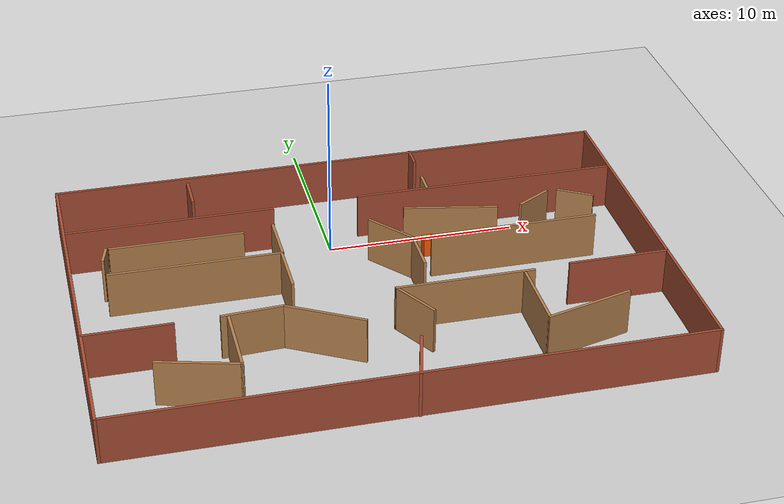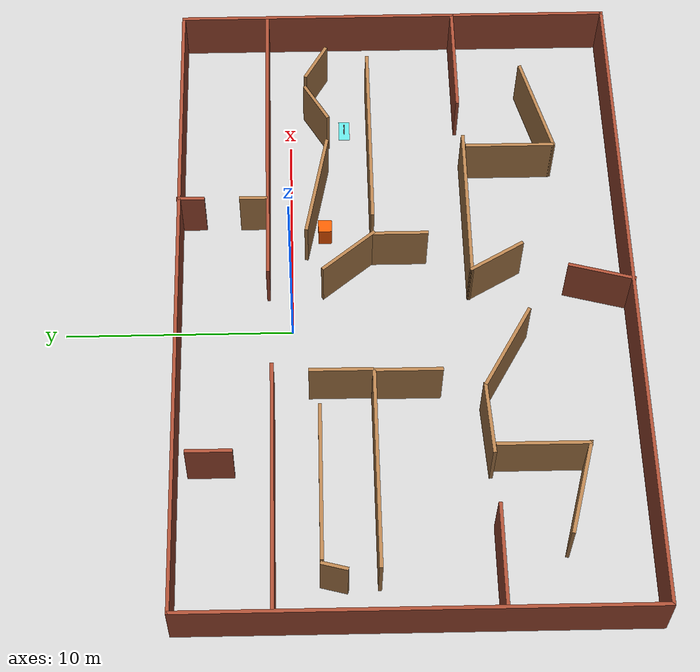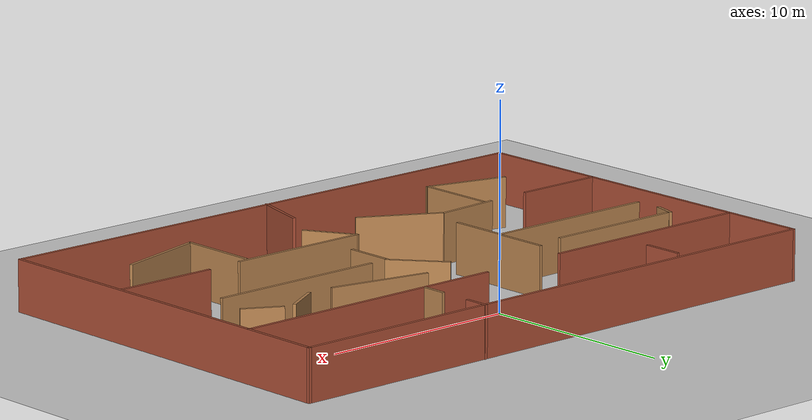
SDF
<sdf version="1.7">
 <world name="my_world">
  <model name="ground_plane">
   <static>1</static>
   <link name="link">
    <collision name="collision">
     <geometry><plane><normal>0 0 1</normal><size>100 100</size></plane></geometry>
     <surface>
      <contact><collide_bitmask>65535</collide_bitmask></contact>
      <friction><ode><mu>100</mu><mu2>50</mu2></ode></friction>
     </surface>
    </collision>
    <visual name="visual">
     <cast_shadows>0</cast_shadows>
     <geometry><plane><normal>0 0 1</normal><size>100 100</size></plane></geometry>
     <material>
      <script><uri>file://media/materials/scripts/gazebo.material</uri><name>Gazebo/Grey</name></script>
     </material>
    </visual>
   </link>
  </model>
  <model name="officeroom">
   <pose>0.9981 -4.92976 0 0 -0 0</pose>
   <link name="Wall_10">
    <collision name="Wall_10_Collision">
     <geometry><box><size>20 0.15 2.5</size></box></geometry>
     <pose>0 0 1.25 0 -0 0</pose>
     <surface><contact><ode><max_vel>0.2</max_vel><min_depth>0.005</min_depth></ode></contact></surface>
    </collision>
    <visual name="Wall_10_Visual">
     <pose>0 0 1.25 0 -0 0</pose>
     <geometry><box><size>20 0.15 2.5</size></box></geometry>
     <material>
      <script><uri>file://media/materials/scripts/gazebo.material</uri><name>Gazebo/Bricks</name></script>
      <ambient>1 1 1 1</ambient>
     </material>
     <meta><layer>0</layer></meta>
    </visual>
    <pose>14.925 0.014919 0 0 -0 -1.57081</pose>
   </link>
   <link name="Wall_107">
    <collision name="Wall_107_Collision">
     <geometry><box><size>3.27854 0.15 2.5</size></box></geometry>
     <pose>0 0 1.25 0 -0 0</pose>
     <surface><contact><ode><max_vel>0.2</max_vel><min_depth>0.005</min_depth></ode></contact></surface>
    </collision>
    <visual name="Wall_107_Visual">
     <pose>0 0 1.25 0 -0 0</pose>
     <geometry><box><size>3.27854 0.15 2.5</size></box></geometry>
     <material>
      <script><uri>file://media/materials/scripts/gazebo.material</uri><name>Gazebo/Wood</name></script>
      <ambient>1 1 1 1</ambient>
     </material>
     <meta><layer>0</layer></meta>
    </visual>
    <pose>-6.58027 -3.242 0 0 -0 -3.08207</pose>
   </link>
   <link name="Wall_109">
    <collision name="Wall_109_Collision">
     <geometry><box><size>4.5 0.15 2.5</size></box></geometry>
     <pose>0 0 1.25 0 -0 0</pose>
     <surface><contact><ode><max_vel>0.2</max_vel><min_depth>0.005</min_depth></ode></contact></surface>
    </collision>
    <visual name="Wall_109_Visual">
     <pose>0 0 1.25 0 -0 0</pose>
     <geometry><box><size>4.5 0.15 2.5</size></box></geometry>
     <material>
      <script><uri>file://media/materials/scripts/gazebo.material</uri><name>Gazebo/Bricks</name></script>
      <ambient>1 1 1 1</ambient>
     </material>
     <meta><layer>0</layer></meta>
    </visual>
    <pose>-12.6881 -3.41033 0 0 -0 0</pose>
   </link>
   <link name="Wall_113">
    <collision name="Wall_113_Collision">
     <geometry><box><size>7.25 0.15 2.5</size></box></geometry>
     <pose>0 0 1.25 0 -0 0</pose>
     <surface><contact><ode><max_vel>0.2</max_vel><min_depth>0.005</min_depth></ode></contact></surface>
    </collision>
    <visual name="Wall_113_Visual">
     <pose>0 0 1.25 0 -0 0</pose>
     <geometry><box><size>7.25 0.15 2.5</size></box></geometry>
     <material>
      <script><uri>file://media/materials/scripts/gazebo.material</uri><name>Gazebo/Wood</name></script>
      <ambient>1 1 1 1</ambient>
     </material>
     <meta><layer>0</layer></meta>
    </visual>
    <pose>4.22386 -2.91887 0 0 -0 0</pose>
   </link>
   <link name="Wall_115">
    <collision name="Wall_115_Collision">
     <geometry><box><size>5.25 0.15 2.5</size></box></geometry>
     <pose>0 0 1.25 0 -0 0</pose>
     <surface><contact><ode><max_vel>0.2</max_vel><min_depth>0.005</min_depth></ode></contact></surface>
    </collision>
    <visual name="Wall_115_Visual">
     <pose>0 0 1.25 0 -0 0</pose>
     <geometry><box><size>5.25 0.15 2.5</size></box></geometry>
     <material>
      <script><uri>file://media/materials/scripts/gazebo.material</uri><name>Gazebo/Bricks</name></script>
      <ambient>1 1 1 1</ambient>
     </material>
     <meta><layer>0</layer></meta>
    </visual>
    <pose>12.3137 -2.7793 0 0 -0 3.14159</pose>
   </link>
   <link name="Wall_118">
    <collision name="Wall_118_Collision">
     <geometry><box><size>2.5 0.15 2.5</size></box></geometry>
     <pose>0 0 1.25 0 -0 0</pose>
     <surface><contact><ode><max_vel>0.2</max_vel><min_depth>0.005</min_depth></ode></contact></surface>
    </collision>
    <visual name="Wall_118_Visual">
     <pose>0 0 1.25 0 -0 0</pose>
     <geometry><box><size>2.5 0.15 2.5</size></box></geometry>
     <material>
      <script><uri>file://media/materials/scripts/gazebo.material</uri><name>Gazebo/Wood</name></script>
      <ambient>1 1 1 1</ambient>
     </material>
     <meta><layer>0</layer></meta>
    </visual>
    <pose>2.60295 0.147134 0 0 -0 -1.5708</pose>
   </link>
   <link name="Wall_12">
    <collision name="Wall_12_Collision">
     <geometry><box><size>30 0.15 2.5</size></box></geometry>
     <pose>0 0 1.25 0 -0 0</pose>
     <surface><contact><ode><max_vel>0.2</max_vel><min_depth>0.005</min_depth></ode></contact></surface>
    </collision>
    <visual name="Wall_12_Visual">
     <pose>0 0 1.25 0 -0 0</pose>
     <geometry><box><size>30 0.15 2.5</size></box></geometry>
     <material>
      <script><uri>file://media/materials/scripts/gazebo.material</uri><name>Gazebo/Bricks</name></script>
      <ambient>1 1 1 1</ambient>
     </material>
     <meta><layer>0</layer></meta>
    </visual>
    <pose>-0.000162 -9.90993 0 0 -0 3.14159</pose>
   </link>
   <link name="Wall_120">
    <collision name="Wall_120_Collision">
     <geometry><box><size>2.75 0.15 2.5</size></box></geometry>
     <pose>0 0 1.25 0 -0 0</pose>
     <surface><contact><ode><max_vel>0.2</max_vel><min_depth>0.005</min_depth></ode></contact></surface>
    </collision>
    <visual name="Wall_120_Visual">
     <pose>0 0 1.25 0 -0 0</pose>
     <geometry><box><size>2.75 0.15 2.5</size></box></geometry>
     <material>
      <script><uri>file://media/materials/scripts/gazebo.material</uri><name>Gazebo/Wood</name></script>
      <ambient>1 1 1 1</ambient>
     </material>
     <meta><layer>0</layer></meta>
    </visual>
    <pose>1.32386 -4.0447 0 0 -0 -1.0472</pose>
   </link>
   <link name="Wall_125">
    <collision name="Wall_125_Collision">
     <geometry><box><size>4 0.15 2.5</size></box></geometry>
     <pose>0 0 1.25 0 -0 0</pose>
     <surface><contact><ode><max_vel>0.2</max_vel><min_depth>0.005</min_depth></ode></contact></surface>
    </collision>
    <visual name="Wall_125_Visual">
     <pose>0 0 1.25 0 -0 0</pose>
     <geometry><box><size>4 0.15 2.5</size></box></geometry>
     <material>
      <script><uri>file://media/materials/scripts/gazebo.material</uri><name>Gazebo/Wood</name></script>
      <ambient>1 1 1 1</ambient>
     </material>
     <meta><layer>0</layer></meta>
    </visual>
    <pose>-7.82101 -5.406 0 0 -0 -1.5708</pose>
   </link>
   <link name="Wall_127">
    <collision name="Wall_127_Collision">
     <geometry><box><size>4 0.15 2.5</size></box></geometry>
     <pose>0 0 1.25 0 -0 0</pose>
     <surface><contact><ode><max_vel>0.2</max_vel><min_depth>0.005</min_depth></ode></contact></surface>
    </collision>
    <visual name="Wall_127_Visual">
     <pose>0 0 1.25 0 -0 0</pose>
     <geometry><box><size>4 0.15 2.5</size></box></geometry>
     <material>
      <script><uri>file://media/materials/scripts/gazebo.material</uri><name>Gazebo/Wood</name></script>
      <ambient>1 1 1 1</ambient>
     </material>
     <meta><layer>0</layer></meta>
    </visual>
    <pose>7.28181 -5.01384 0 0 -0 -1.5708</pose>
   </link>
   <link name="Wall_129">
    <collision name="Wall_129_Collision">
     <geometry><box><size>4.25 0.15 2.5</size></box></geometry>
     <pose>0 0 1.25 0 -0 0</pose>
     <surface><contact><ode><max_vel>0.2</max_vel><min_depth>0.005</min_depth></ode></contact></surface>
    </collision>
    <visual name="Wall_129_Visual">
     <pose>0 0 1.25 0 -0 0</pose>
     <geometry><box><size>4.25 0.15 2.5</size></box></geometry>
     <material>
      <script><uri>file://media/materials/scripts/gazebo.material</uri><name>Gazebo/Wood</name></script>
      <ambient>1 1 1 1</ambient>
     </material>
     <meta><layer>0</layer></meta>
    </visual>
    <pose>-9.80116 -6.80042 0 0 -0 2.87979</pose>
   </link>
   <link name="Wall_132">
    <collision name="Wall_132_Collision">
     <geometry><box><size>4.75 0.15 2.5</size></box></geometry>
     <pose>0 0 1.25 0 -0 0</pose>
     <surface><contact><ode><max_vel>0.2</max_vel><min_depth>0.005</min_depth></ode></contact></surface>
    </collision>
    <visual name="Wall_132_Visual">
     <pose>0 0 1.25 0 -0 0</pose>
     <geometry><box><size>4.75 0.15 2.5</size></box></geometry>
     <material>
      <script><uri>file://media/materials/scripts/gazebo.material</uri><name>Gazebo/Wood</name></script>
      <ambient>1 1 1 1</ambient>
     </material>
     <meta><layer>0</layer></meta>
    </visual>
    <pose>9.51735 -6.40461 0 0 -0 0.261799</pose>
   </link>
   <link name="Wall_134">
    <collision name="Wall_134_Collision">
     <geometry><box><size>3 0.15 2.5</size></box></geometry>
     <pose>0 0 1.25 0 -0 0</pose>
     <surface><contact><ode><max_vel>0.2</max_vel><min_depth>0.005</min_depth></ode></contact></surface>
    </collision>
    <visual name="Wall_134_Visual">
     <pose>0 0 1.25 0 -0 0</pose>
     <geometry><box><size>3 0.15 2.5</size></box></geometry>
     <material>
      <script><uri>file://media/materials/scripts/gazebo.material</uri><name>Gazebo/Bricks</name></script>
      <ambient>1 1 1 1</ambient>
     </material>
     <meta><layer>0</layer></meta>
    </visual>
    <pose>0.445972 -8.57754 0 0 -0 1.309</pose>
   </link>
   <link name="Wall_15">
    <collision name="Wall_15_Collision">
     <geometry><box><size>20 0.15 2.5</size></box></geometry>
     <pose>0 0 1.25 0 -0 0</pose>
     <surface><contact><ode><max_vel>0.2</max_vel><min_depth>0.005</min_depth></ode></contact></surface>
    </collision>
    <visual name="Wall_15_Visual">
     <pose>0 0 1.25 0 -0 0</pose>
     <geometry><box><size>20 0.15 2.5</size></box></geometry>
     <material>
      <script><uri>file://media/materials/scripts/gazebo.material</uri><name>Gazebo/Bricks</name></script>
      <ambient>1 1 1 1</ambient>
     </material>
     <meta><layer>0</layer></meta>
    </visual>
    <pose>-14.9252 0.015073 0 0 -0 1.5708</pose>
   </link>
   <link name="Wall_2">
    <collision name="Wall_2_Collision">
     <geometry><box><size>30 0.15 2.5</size></box></geometry>
     <pose>0 0 1.25 0 -0 0</pose>
     <surface><contact><ode><max_vel>0.2</max_vel><min_depth>0.005</min_depth></ode></contact></surface>
    </collision>
    <visual name="Wall_2_Visual">
     <pose>0 0 1.25 0 -0 0</pose>
     <geometry><box><size>30 0.15 2.5</size></box></geometry>
     <material>
      <script><uri>file://media/materials/scripts/gazebo.material</uri><name>Gazebo/Bricks</name></script>
      <ambient>1 1 1 1</ambient>
     </material>
     <meta><layer>0</layer></meta>
    </visual>
    <pose>0.000163 9.93976 0 0 -0 0</pose>
   </link>
   <link name="Wall_29">
    <collision name="Wall_29_Collision">
     <geometry><box><size>1.25 0.15 2.5</size></box></geometry>
     <pose>0 0 1.25 0 -0 0</pose>
     <surface><contact><ode><max_vel>0.2</max_vel><min_depth>0.005</min_depth></ode></contact></surface>
    </collision>
    <visual name="Wall_29_Visual">
     <pose>0 0 1.25 0 -0 0</pose>
     <geometry><box><size>1.25 0.15 2.5</size></box></geometry>
     <material>
      <script><uri>file://media/materials/scripts/gazebo.material</uri><name>Gazebo/Bricks</name></script>
      <ambient>1 1 1 1</ambient>
     </material>
     <meta><layer>0</layer></meta>
    </visual>
    <pose>4.61028 9.42084 0 0 -0 -1.5708</pose>
   </link>
   <link name="Wall_31">
    <collision name="Wall_31_Collision">
     <geometry><box><size>1.25 0.15 2.5</size></box></geometry>
     <pose>0 0 1.25 0 -0 0</pose>
     <surface><contact><ode><max_vel>0.2</max_vel><min_depth>0.005</min_depth></ode></contact></surface>
    </collision>
    <visual name="Wall_31_Visual">
     <pose>0 0 1.25 0 -0 0</pose>
     <geometry><box><size>1.25 0.15 2.5</size></box></geometry>
     <material>
      <script><uri>file://media/materials/scripts/gazebo.material</uri><name>Gazebo/Wood</name></script>
      <ambient>1 1 1 1</ambient>
     </material>
     <meta><layer>0</layer></meta>
    </visual>
    <pose>4.59016 6.61881 0 0 -0 1.5708</pose>
   </link>
   <link name="Wall_34">
    <collision name="Wall_34_Collision">
     <geometry><box><size>2 0.15 2.5</size></box></geometry>
     <pose>0 0 1.25 0 -0 0</pose>
     <surface><contact><ode><max_vel>0.2</max_vel><min_depth>0.005</min_depth></ode></contact></surface>
    </collision>
    <visual name="Wall_34_Visual">
     <pose>0 0 1.25 0 -0 0</pose>
     <geometry><box><size>2 0.15 2.5</size></box></geometry>
     <material>
      <script><uri>file://media/materials/scripts/gazebo.material</uri><name>Gazebo/Bricks</name></script>
      <ambient>1 1 1 1</ambient>
     </material>
     <meta><layer>0</layer></meta>
    </visual>
    <pose>-7.92097 8.43964 0 0 -0 -1.5708</pose>
   </link>
   <link name="Wall_38">
    <collision name="Wall_38_Collision">
     <geometry><box><size>11 0.15 2.5</size></box></geometry>
     <pose>0 0 1.25 0 -0 0</pose>
     <surface><contact><ode><max_vel>0.2</max_vel><min_depth>0.005</min_depth></ode></contact></surface>
    </collision>
    <visual name="Wall_38_Visual">
     <pose>0 0 1.25 0 -0 0</pose>
     <geometry><box><size>11 0.15 2.5</size></box></geometry>
     <material>
      <script><uri>file://media/materials/scripts/gazebo.material</uri><name>Gazebo/Bricks</name></script>
      <ambient>1 1 1 1</ambient>
     </material>
     <meta><layer>0</layer></meta>
    </visual>
    <pose>-9.35541 5.8262 0 0 -0 0</pose>
   </link>
   <link name="Wall_40">
    <collision name="Wall_40_Collision">
     <geometry><box><size>14.25 0.15 2.5</size></box></geometry>
     <pose>0 0 1.25 0 -0 0</pose>
     <surface><contact><ode><max_vel>0.2</max_vel><min_depth>0.005</min_depth></ode></contact></surface>
    </collision>
    <visual name="Wall_40_Visual">
     <pose>0 0 1.25 0 -0 0</pose>
     <geometry><box><size>14.25 0.15 2.5</size></box></geometry>
     <material>
      <script><uri>file://media/materials/scripts/gazebo.material</uri><name>Gazebo/Bricks</name></script>
      <ambient>1 1 1 1</ambient>
     </material>
     <meta><layer>0</layer></meta>
    </visual>
    <pose>7.83962 5.98375 0 0 -0 3.14159</pose>
   </link>
   <link name="Wall_46">
    <collision name="Wall_46_Collision">
     <geometry><box><size>7.0 0.15 2.5</size></box></geometry>
     <pose>0 0 1.25 0 -0 0</pose>
     <surface><contact><ode><max_vel>0.2</max_vel><min_depth>0.005</min_depth></ode></contact></surface>
    </collision>
    <visual name="Wall_46_Visual">
     <pose>0 0 1.25 0 -0 0</pose>
     <geometry><box><size>7.0 0.15 2.5</size></box></geometry>
     <material>
      <script><uri>file://media/materials/scripts/gazebo.material</uri><name>Gazebo/Wood</name></script>
      <ambient>1 1 1 1</ambient>
     </material>
     <meta><layer>0</layer></meta>
    </visual>
    <pose>-9.30884 3.8355 0 0 -0 -0.004163</pose>
   </link>
   <link name="Wall_49">
    <collision name="Wall_49_Collision">
     <geometry><box><size>1.17019 0.15 2.5</size></box></geometry>
     <pose>0 0 1.25 0 -0 0</pose>
     <surface><contact><ode><max_vel>0.2</max_vel><min_depth>0.005</min_depth></ode></contact></surface>
    </collision>
    <visual name="Wall_49_Visual">
     <pose>0 0 1.25 0 -0 0</pose>
     <geometry><box><size>1.17019 0.15 2.5</size></box></geometry>
     <material>
      <script><uri>file://media/materials/scripts/gazebo.material</uri><name>Gazebo/Wood</name></script>
      <ambient>1 1 1 1</ambient>
     </material>
     <meta><layer>0</layer></meta>
    </visual>
    <pose>-13.076 3.35727 0 0 -0 -1.82702</pose>
   </link>
   <link name="Wall_57">
    <collision name="Wall_57_Collision">
     <geometry><box><size>2.75 0.15 2.5</size></box></geometry>
     <pose>0 0 1.25 0 -0 0</pose>
     <surface><contact><ode><max_vel>0.2</max_vel><min_depth>0.005</min_depth></ode></contact></surface>
    </collision>
    <visual name="Wall_57_Visual">
     <pose>0 0 1.25 0 -0 0</pose>
     <geometry><box><size>2.75 0.15 2.5</size></box></geometry>
     <material>
      <script><uri>file://media/materials/scripts/gazebo.material</uri><name>Gazebo/Wood</name></script>
      <ambient>1 1 1 1</ambient>
     </material>
     <meta><layer>0</layer></meta>
    </visual>
    <pose>-4.21161 2.89682 0 0 -0 1.5708</pose>
   </link>
   <link name="Wall_59">
    <collision name="Wall_59_Collision">
     <geometry><box><size>5.0 0.15 2.5</size></box></geometry>
     <pose>0 0 1.25 0 -0 0</pose>
     <surface><contact><ode><max_vel>0.2</max_vel><min_depth>0.005</min_depth></ode></contact></surface>
    </collision>
    <visual name="Wall_59_Visual">
     <pose>0 0 1.25 0 -0 0</pose>
     <geometry><box><size>5.0 0.15 2.5</size></box></geometry>
     <material>
      <script><uri>file://media/materials/scripts/gazebo.material</uri><name>Gazebo/Wood</name></script>
      <ambient>1 1 1 1</ambient>
     </material>
     <meta><layer>0</layer></meta>
    </visual>
    <pose>5.28704 3.77735 0 0 -0 -0.202428</pose>
   </link>
   <link name="Wall_60">
    <collision name="Wall_60_Collision">
     <geometry><box><size>2.1 0.15 2.5</size></box></geometry>
     <pose>0 0 1.25 0 -0 0</pose>
     <surface><contact><ode><max_vel>0.2</max_vel><min_depth>0.005</min_depth></ode></contact></surface>
    </collision>
    <visual name="Wall_60_Visual">
     <pose>0 0 1.25 0 -0 0</pose>
     <geometry><box><size>2.1 0.15 2.5</size></box></geometry>
     <material>
      <script><uri>file://media/materials/scripts/gazebo.material</uri><name>Gazebo/Wood</name></script>
      <ambient>1 1 1 1</ambient>
     </material>
     <meta><layer>0</layer></meta>
    </visual>
    <pose>9.88652 3.73459 0 0 -0 0.527727</pose>
   </link>
   <link name="Wall_61">
    <collision name="Wall_61_Collision">
     <geometry><box><size>2.0 0.15 2.5</size></box></geometry>
     <pose>0 0 1.25 0 -0 0</pose>
     <surface><contact><ode><max_vel>0.2</max_vel><min_depth>0.005</min_depth></ode></contact></surface>
    </collision>
    <visual name="Wall_61_Visual">
     <pose>0 0 1.25 0 -0 0</pose>
     <geometry><box><size>2.0 0.15 2.5</size></box></geometry>
     <material>
      <script><uri>file://media/materials/scripts/gazebo.material</uri><name>Gazebo/Wood</name></script>
      <ambient>1 1 1 1</ambient>
     </material>
     <meta><layer>0</layer></meta>
    </visual>
    <pose>12.2003 3.7238 0 0 -0 -0.523599</pose>
   </link>
   <link name="Wall_66">
    <collision name="Wall_66_Collision">
     <geometry><box><size>3.01901 0.15 2.5</size></box></geometry>
     <pose>0 0 1.25 0 -0 0</pose>
     <surface><contact><ode><max_vel>0.2</max_vel><min_depth>0.005</min_depth></ode></contact></surface>
    </collision>
    <visual name="Wall_66_Visual">
     <pose>0 0 1.25 0 -0 0</pose>
     <geometry><box><size>3.01901 0.15 2.5</size></box></geometry>
     <material>
      <script><uri>file://media/materials/scripts/gazebo.material</uri><name>Gazebo/Wood</name></script>
      <ambient>1 1 1 1</ambient>
     </material>
     <meta><layer>0</layer></meta>
    </visual>
    <pose>1.74226 2.43334 0 0 -0 2.25548</pose>
   </link>
   <link name="Wall_68">
    <collision name="Wall_68_Collision">
     <geometry><box><size>9 0.15 2.5</size></box></geometry>
     <pose>0 0 1.25 0 -0 0</pose>
     <surface><contact><ode><max_vel>0.2</max_vel><min_depth>0.005</min_depth></ode></contact></surface>
    </collision>
    <visual name="Wall_68_Visual">
     <pose>0 0 1.25 0 -0 0</pose>
     <geometry><box><size>9 0.15 2.5</size></box></geometry>
     <material>
      <script><uri>file://media/materials/scripts/gazebo.material</uri><name>Gazebo/Wood</name></script>
      <ambient>1 1 1 1</ambient>
     </material>
     <meta><layer>0</layer></meta>
    </visual>
    <pose>-8.68528 1.49923 0 0 -0 3.14159</pose>
   </link>
   <link name="Wall_72">
    <collision name="Wall_72_Collision">
     <geometry><box><size>8.9356 0.15 2.5</size></box></geometry>
     <pose>0 0 1.25 0 -0 0</pose>
     <surface><contact><ode><max_vel>0.2</max_vel><min_depth>0.005</min_depth></ode></contact></surface>
    </collision>
    <visual name="Wall_72_Visual">
     <pose>0 0 1.25 0 -0 0</pose>
     <geometry><box><size>8.9356 0.15 2.5</size></box></geometry>
     <material>
      <script><uri>file://media/materials/scripts/gazebo.material</uri><name>Gazebo/Wood</name></script>
      <ambient>1 1 1 1</ambient>
     </material>
     <meta><layer>0</layer></meta>
    </visual>
    <pose>8.04226 1.32213 0 0 -0 3.14159</pose>
   </link>
   <link name="Wall_75">
    <collision name="Wall_75_Collision">
     <geometry><box><size>3 0.15 2.5</size></box></geometry>
     <pose>0 0 1.25 0 -0 0</pose>
     <surface><contact><ode><max_vel>0.2</max_vel><min_depth>0.005</min_depth></ode></contact></surface>
    </collision>
    <visual name="Wall_75_Visual">
     <pose>0 0 1.25 0 -0 0</pose>
     <geometry><box><size>3 0.15 2.5</size></box></geometry>
     <material>
      <script><uri>file://media/materials/scripts/gazebo.material</uri><name>Gazebo/Wood</name></script>
      <ambient>1 1 1 1</ambient>
     </material>
     <meta><layer>0</layer></meta>
    </visual>
    <pose>-4.26028 0.074229 0 0 -0 -1.5708</pose>
   </link>
   <link name="Wall_81">
    <collision name="Wall_81_Collision">
     <geometry><box><size>4.25 0.15 2.5</size></box></geometry>
     <pose>0 0 1.25 0 -0 0</pose>
     <surface><contact><ode><max_vel>0.2</max_vel><min_depth>0.005</min_depth></ode></contact></surface>
    </collision>
    <visual name="Wall_81_Visual">
     <pose>0 0 1.25 0 -0 0</pose>
     <geometry><box><size>4.25 0.15 2.5</size></box></geometry>
     <material>
      <script><uri>file://media/materials/scripts/gazebo.material</uri><name>Gazebo/Wood</name></script>
      <ambient>1 1 1 1</ambient>
     </material>
     <meta><layer>0</layer></meta>
    </visual>
    <pose>-3.1969 -4.22048 0 0 -0 -0.523599</pose>
   </link>
   <static>1</static>
  </model>
  <model name="zone_c">
   <static>1</static>
   <pose>11 -2.5 0.01 0 -0 0</pose>
   <link name="base">
    <visual name="visual">
     <geometry><box><size>1 0.5 0.02</size></box></geometry>
     <material><ambient>0 1 1 0.5</ambient><diffuse>0 1 1 0.5</diffuse></material>
    </visual>
   </link>
   <link name="letter_C_1">
    <pose>-0.05 0 0.38 0 -0 0</pose>
    <visual name="v">
     <geometry><box><size>0.3 0.04 0.04</size></box></geometry>
     <material><ambient>0 0 0 1</ambient><diffuse>0 0 0 1</diffuse></material>
    </visual>
   </link>
   <link name="letter_C_2">
    <pose>-0.05 0 0.02 0 -0 0</pose>
    <visual name="v">
     <geometry><box><size>0.3 0.04 0.04</size></box></geometry>
     <material><ambient>0 0 0 1</ambient><diffuse>0 0 0 1</diffuse></material>
    </visual>
   </link>
   <link name="letter_C_3">
    <pose>-0.18 0 0.2 0 -0 0</pose>
    <visual name="v">
     <geometry><box><size>0.04 0.04 0.4</size></box></geometry>
     <material><ambient>0 0 0 1</ambient><diffuse>0 0 0 1</diffuse></material>
    </visual>
   </link>
  </model>
  <model name="moving_obstacle_2">
   <pose>5.0 -1.5 0.505 0 0 0</pose>
   <link name="link">
    <inertial>
     <mass>0.35</mass>
     <inertia><ixx>0.008</ixx><ixy>0.0</ixy><ixz>0.0</ixz><iyy>0.008</iyy><iyz>0.0</iyz><izz>0.004</izz></inertia>
    </inertial>
    <collision name="collision">
     <geometry><box><size>0.60 0.60 1.00</size></box></geometry>
     <surface>
      <friction><ode><mu>0.05</mu><mu2>0.05</mu2></ode></friction>
      <bounce><restitution_coefficient>0.0</restitution_coefficient><threshold>100000.0</threshold></bounce>
      <contact>
       <ode><kp>100000.0</kp><kd>1000.0</kd><max_vel>0.02</max_vel><min_depth>0.001</min_depth></ode>
      </contact>
     </surface>
    </collision>
    <visual name="visual">
     <geometry><box><size>0.60 0.60 1.00</size></box></geometry>
     <material><ambient>1.0 0.55 0.0 1.0</ambient><diffuse>1.0 0.35 0.0 1.0</diffuse></material>
    </visual>
   </link>
   <plugin name="moving_obstacle_2_simple_move" filename="libsimple_move_plugin.so">
    <speed>0.18</speed>
    <force>3.0</force>
    <pose_publish_rate>10.0</pose_publish_rate>
    <stop_distance>1.15</stop_distance>
    <resume_distance>1.45</resume_distance>
    <emergency_stop_distance>0.78</emergency_stop_distance>
    <route_restore_gain>2.5</route_restore_gain>
    <route_restore_speed>0.22</route_restore_speed>
    <max_cross_track_error>0.12</max_cross_track_error>
    <endpoint_tolerance>0.03</endpoint_tolerance>
    <slowdown_distance>0.30</slowdown_distance>
    <start_x>5.0</start_x>
    <start_y>-3.0</start_y>
    <end_x>5.0</end_x>
    <end_y>0.0</end_y>
   </plugin>
  </model>
 </world>
</sdf>
